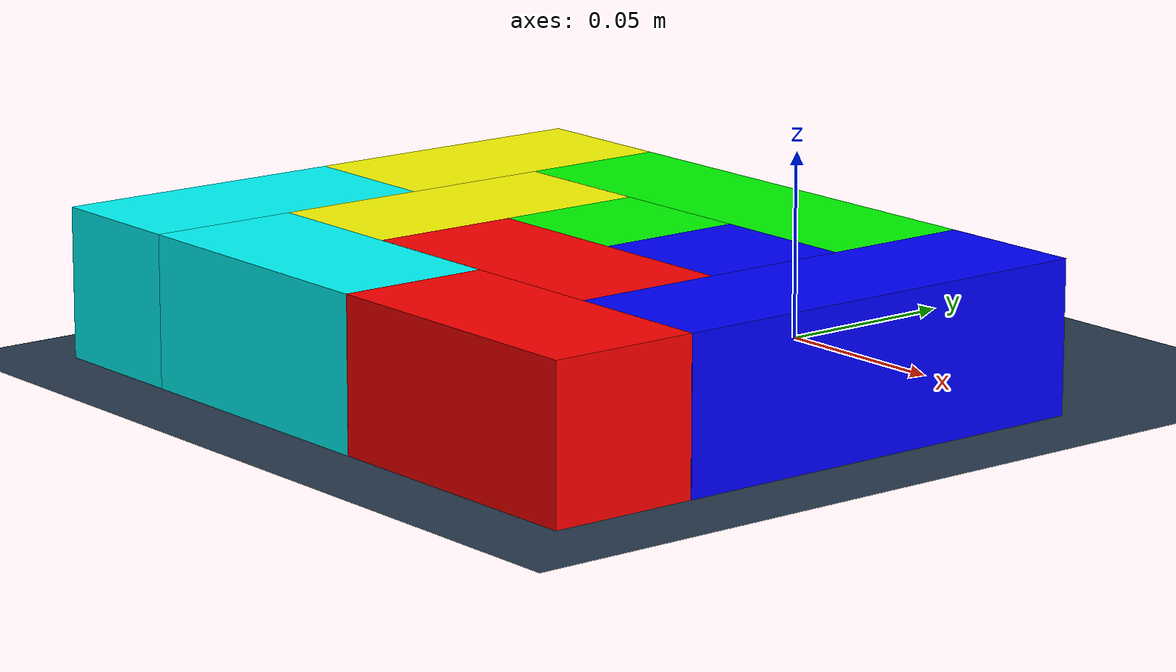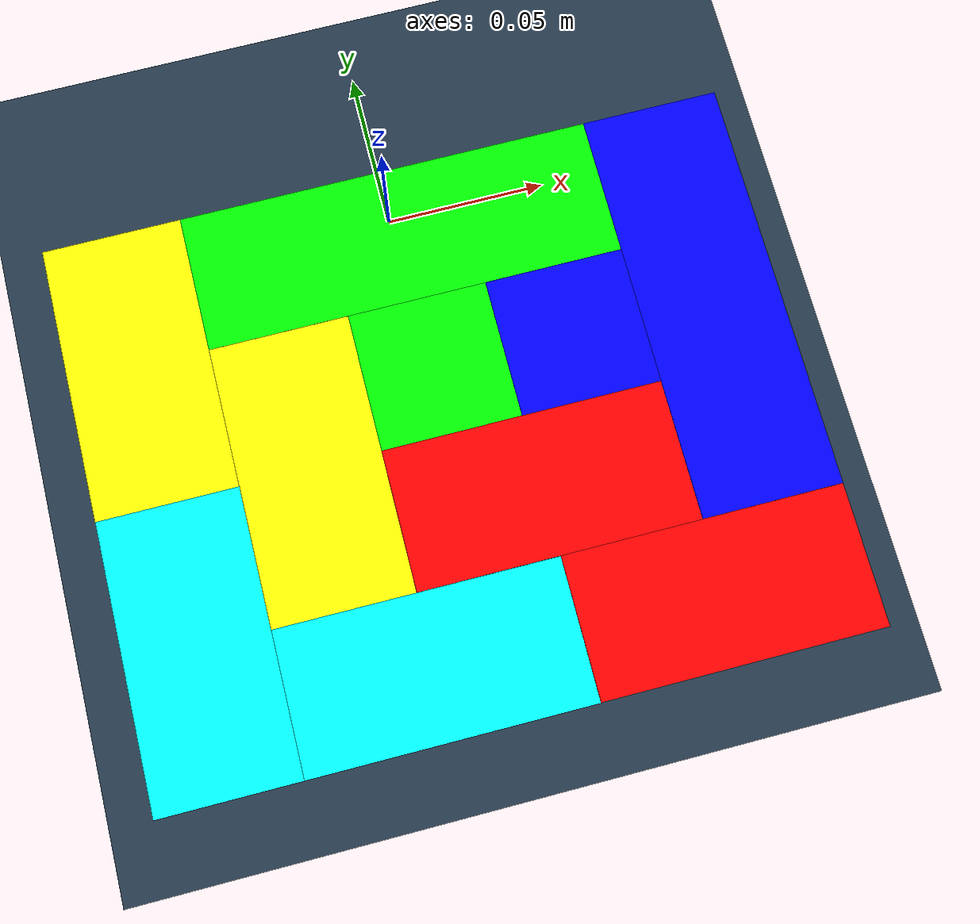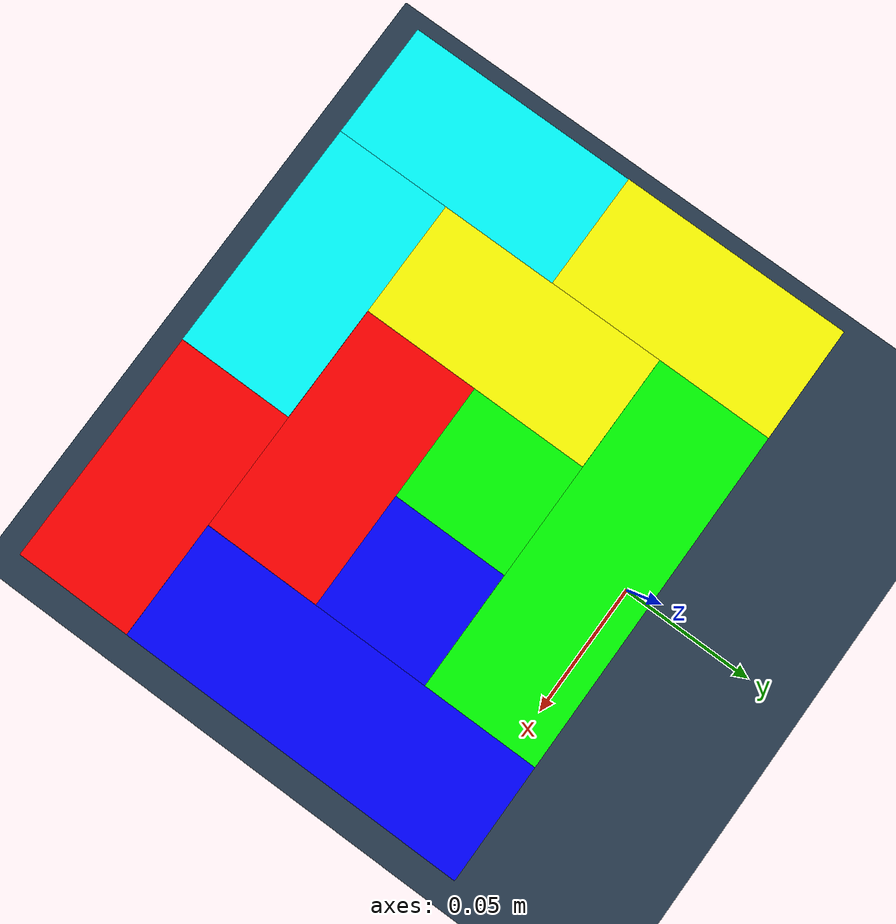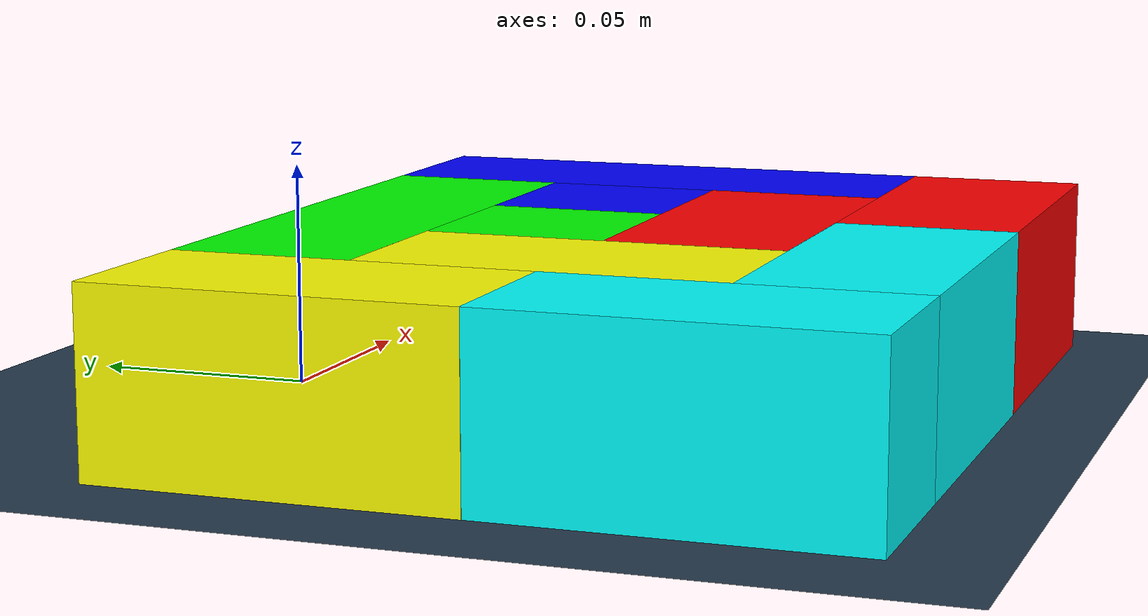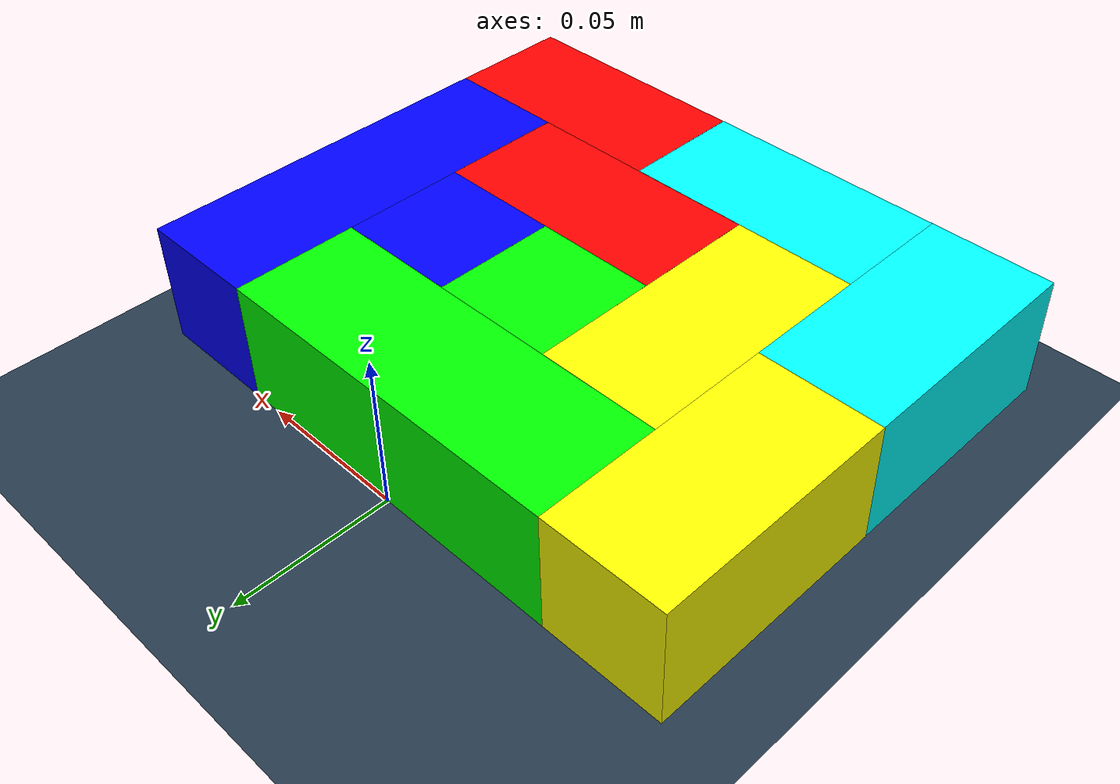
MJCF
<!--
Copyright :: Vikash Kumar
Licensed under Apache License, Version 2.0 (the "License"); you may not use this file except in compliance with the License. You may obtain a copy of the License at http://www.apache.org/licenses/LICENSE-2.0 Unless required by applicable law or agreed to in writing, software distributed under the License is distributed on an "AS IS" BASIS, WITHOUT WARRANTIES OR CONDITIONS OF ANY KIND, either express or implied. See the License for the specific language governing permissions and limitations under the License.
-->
<mujoco model="tetris">

    <compiler angle='radian' coordinate='local'/>

    <asset>
        <texture name="texTet" type="cube" builtin="flat" mark="cross" width="127" height="127"
            markrgb="0 0 0" random="0.01"/>
        <material name='matTet' texture="texTet" texuniform="false"/>
    </asset>

    <default>
        <default class="tetris">
            <geom type="box" material="matTet" condim="3"/>
        </default>
        <default class="target">
            <geom type="box" contype="0" conaffinity="0" group='3'/>
        </default>
    </default>

    <include file='../utils/basic_scene.xml'/>
    <worldbody>

    <body pos='0 0 0.02' euler='1.57 0 0'>
        <body pos="0 0 0.04" childclass="tetris">
            <geom name="dc" pos="0 0 -.02" type="box" size="0.060 0.020 0.020" rgba="0 1 0 1"/>
            <geom name="cc" pos="0 0 .02" type="box" size="0.020 0.020 0.020" rgba="0 1 0 1"/>
            <joint type='slide' axis='1 0 0' range='-1 1'/>
            <joint type='slide' axis='0 1 0' range='-1 1'/>
            <joint type='slide' axis='0 0 1' range='-1 1'/>
            <joint type='hinge' axis='1 0 0' limited='false'/>
            <joint type='hinge' axis='0 1 0' limited='false'/>
            <joint type='hinge' axis='0 0 1' limited='false'/>
        </body>
        <body pos="0 0 0.04" childclass="target">
            <geom name="dc1" pos="0 0 -.02" type="box" size="0.060 0.020 0.020" rgba="0 1 0 .2"/>
            <geom name="cc1" pos="0 0 .02" type="box" size="0.020 0.020 0.020" rgba="0 1 0 .2"/>
        </body>

        <body pos="0.06 0 0.06" euler='0 -1.57 0' childclass="tetris">
            <geom name="cd" pos="0 0 -.02" type="box" size="0.060 0.020 0.020" rgba="0 0 1 1"/>
            <geom name="ce" pos="0 0 .02" type="box" size="0.020 0.020 0.020" rgba="0 0 1 1"/>
            <joint type='slide' axis='1 0 0' range='-1 1'/>
            <joint type='slide' axis='0 1 0' range='-1 1'/>
            <joint type='slide' axis='0 0 1' range='-1 1'/>
            <joint type='hinge' axis='1 0 0' limited='false'/>
            <joint type='hinge' axis='0 1 0' limited='false'/>
            <joint type='hinge' axis='0 0 1' limited='false'/>
        </body>
        <body pos="0.06 0 0.06" euler='0 -1.57 0' childclass="target">
            <geom name="cd1" pos="0 0 -.02" type="box" size="0.060 0.020 0.020" rgba="0 0 1 .1"/>
            <geom name="ce1" pos="0 0 .02" type="box" size="0.020 0.020 0.020" rgba="0 0 1 .1"/>
        </body>

        <body pos="0.04 0 0.12" childclass="tetris">
            <geom name="bc" pos="-.02 0 -.02" type="box" size="0.040 0.020 0.020" rgba="1 0 0 1"/>
            <geom name="ad" pos="0.02 0 .02" type="box" size="0.040 0.020 0.020" rgba="1 0 0 1"/>
            <joint type='slide' axis='1 0 0' range='-1 1'/>
            <joint type='slide' axis='0 1 0' range='-1 1'/>
            <joint type='slide' axis='0 0 1' range='-1 1'/>
            <joint type='hinge' axis='1 0 0' limited='false'/>
            <joint type='hinge' axis='0 1 0' limited='false'/>
            <joint type='hinge' axis='0 0 1' limited='false'/>
        </body>

        <body pos="0.04 0 0.12" childclass="target">
            <geom name="bc1" pos="-.02 0 -.02" type="box" size="0.040 0.020 0.020" rgba="1 0 0 .2"/>
            <geom name="ad1" pos="0.02 0 .02" type="box" size="0.040 0.020 0.020" rgba="1 0 0 .2"/>
        </body>

        <body pos="-.06 0 0.06" euler='0 1.57 0' childclass="tetris">
            <geom name="ca" pos=".02 0 -.02" type="box" size="0.040 0.020 0.020" rgba="1 1 0 1"/>
            <geom name="cb" pos="-.02 0 .02" type="box" size="0.040 0.020 0.020" rgba="1 1 0 1"/>
            <joint type='slide' axis='1 0 0' range='-1 1'/>
            <joint type='slide' axis='0 1 0' range='-1 1'/>
            <joint type='slide' axis='0 0 1' range='-1 1'/>
            <joint type='hinge' axis='1 0 0' limited='false'/>
            <joint type='hinge' axis='0 1 0' limited='false'/>
            <joint type='hinge' axis='0 0 1' limited='false'/>
        </body>

        <body pos="-.06 0 0.06" euler='0 1.57 0' childclass="target">
            <geom name="ca1" pos="0.02 0 -.02" type="box" size="0.040 0.020 0.020" rgba="1 1 0 .2"/>
            <geom name="cb1" pos="-.02 0 .02" type="box" size="0.040 0.020 0.020" rgba="1 1 0 .2"/>
        </body>

        <body pos="-.04 0 .12" euler='0 3.14 0' childclass="tetris">
            <geom name="aa" pos=".04 0 .00" type="box" size="0.020 0.020 0.040" rgba="0 1 1 1"/>
            <geom name="ab" pos="-.02 0 -.02" type="box" size="0.040 0.020 0.020" rgba="0 1 1 1"/>
            <joint type='slide' axis='1 0 0' range='-1 1'/>
            <joint type='slide' axis='0 1 0' range='-1 1'/>
            <joint type='slide' axis='0 0 1' range='-1 1'/>
            <joint type='hinge' axis='1 0 0' limited='false'/>
            <joint type='hinge' axis='0 1 0' limited='false'/>
            <joint type='hinge' axis='0 0 1' limited='false'/>
        </body>
        <body pos="-.04 0 0.12" euler='0 3.14 0' childclass="target">
            <geom name="aa1" pos=".04 0 .00" type="box" size="0.020 0.020 0.040" rgba="0 1 1 .2"/>
            <geom name="ab1" pos="-.02 0 -.02" type="box" size="0.040 0.020 0.020" rgba="0 1 1 .2"/>
        </body>
    </body>

    </worldbody>
</mujoco>

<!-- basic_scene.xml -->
<mujocoinclude>
    <asset>
        <texture name="skybox" type="skybox" builtin="gradient" rgb1=".08 .09 .10" rgb2="0 0 0"
               width="800" height="800" mark="random" markrgb=".8 .8 .8"/>
        <texture name="texplane" type="2d" builtin="checker" rgb1=".2 .3 .4" rgb2=".1 0.15 0.2" width="512" height="512" markrgb='.1 .1 .1' mark='random' random='.05'/>
        <material name='MatPlane' reflectance='0.05' texture="texplane" texrepeat="1 1" texuniform="true"/>
    </asset>

    <worldbody>
        <light directional='true' diffuse='.8 .8 .8' specular='0.3 0.3 0.3' pos='-1 -1 1' dir='1 1 -1'/>
		<geom name='floor' pos='0 0 0' size='2 2 .1' conaffinity='1' contype='1' type='plane' material="MatPlane" condim='3'/>
    </worldbody>
</mujocoinclude>
